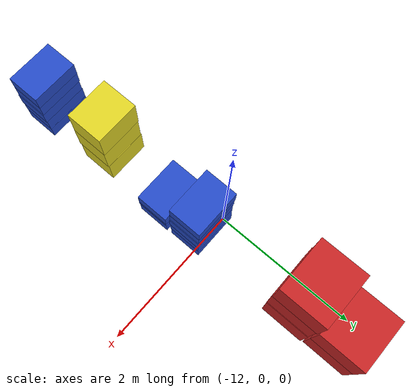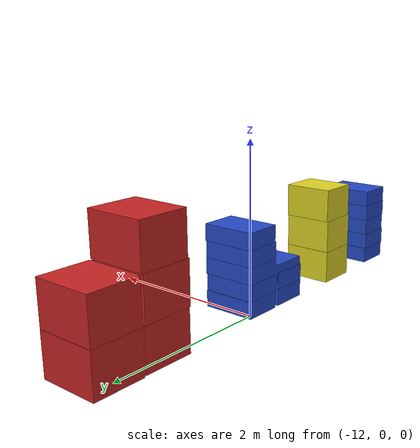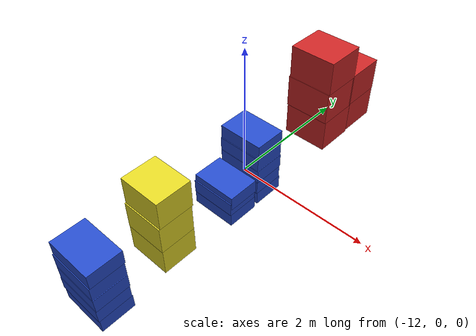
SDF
<sdf version="1.6">
 <world name="default">
  <include><uri>model://sun</uri></include>
  <model name="baggage_B_x5">
   <model name="baggage_B_0">
    <static>1</static>
    <link name="link">
     <collision name="collision"><geometry><box><size>0.65 0.45 0.2</size></box></geometry></collision>
     <visual name="visual">
      <geometry><box><size>0.65 0.45 0.2</size></box></geometry>
      <material>
       <script><uri>file://media/materials/scripts/gazebo.material</uri><name>Gazebo/Blue</name></script>
      </material>
     </visual>
    </link>
    <pose>0 0 0.1 0 -0 0</pose>
   </model>
   <model name="baggage_B_1">
    <static>1</static>
    <link name="link">
     <collision name="collision"><geometry><box><size>0.65 0.45 0.2</size></box></geometry></collision>
     <visual name="visual">
      <geometry><box><size>0.65 0.45 0.2</size></box></geometry>
      <material>
       <script><uri>file://media/materials/scripts/gazebo.material</uri><name>Gazebo/Blue</name></script>
      </material>
     </visual>
    </link>
    <pose>-0.0014 -0.0091 0.3 0 -0 0</pose>
   </model>
   <model name="baggage_B_2">
    <static>1</static>
    <link name="link">
     <collision name="collision"><geometry><box><size>0.65 0.45 0.2</size></box></geometry></collision>
     <visual name="visual">
      <geometry><box><size>0.65 0.45 0.2</size></box></geometry>
      <material>
       <script><uri>file://media/materials/scripts/gazebo.material</uri><name>Gazebo/Blue</name></script>
      </material>
     </visual>
    </link>
    <pose>0.0076 -0.0066 0.5 0 -0 0</pose>
   </model>
   <model name="baggage_B_3">
    <static>1</static>
    <link name="link">
     <collision name="collision"><geometry><box><size>0.65 0.45 0.2</size></box></geometry></collision>
     <visual name="visual">
      <geometry><box><size>0.65 0.45 0.2</size></box></geometry>
      <material>
       <script><uri>file://media/materials/scripts/gazebo.material</uri><name>Gazebo/Blue</name></script>
      </material>
     </visual>
    </link>
    <pose>0 -0.0032 0.7 0 -0 0</pose>
   </model>
   <model name="baggage_B_4">
    <static>1</static>
    <link name="link">
     <collision name="collision"><geometry><box><size>0.65 0.45 0.2</size></box></geometry></collision>
     <visual name="visual">
      <geometry><box><size>0.65 0.45 0.2</size></box></geometry>
      <material>
       <script><uri>file://media/materials/scripts/gazebo.material</uri><name>Gazebo/Blue</name></script>
      </material>
     </visual>
    </link>
    <pose>0.0023 0.0073 0.9 0 -0 0</pose>
   </model>
   <pose>-11.7207 -2.7222 0 0 -0 0</pose>
  </model>
  <model name="baggage_C_x3">
   <model name="baggage_C_0">
    <static>1</static>
    <link name="link">
     <collision name="collision"><geometry><box><size>0.6 0.5 0.4</size></box></geometry></collision>
     <visual name="visual">
      <geometry><box><size>0.6 0.5 0.4</size></box></geometry>
      <material>
       <script><uri>file://media/materials/scripts/gazebo.material</uri><name>Gazebo/Yellow</name></script>
      </material>
     </visual>
    </link>
    <pose>0 0 0.2 0 -0 0</pose>
   </model>
   <model name="baggage_C_1">
    <static>1</static>
    <link name="link">
     <collision name="collision"><geometry><box><size>0.6 0.5 0.4</size></box></geometry></collision>
     <visual name="visual">
      <geometry><box><size>0.6 0.5 0.4</size></box></geometry>
      <material>
       <script><uri>file://media/materials/scripts/gazebo.material</uri><name>Gazebo/Yellow</name></script>
      </material>
     </visual>
    </link>
    <pose>0.0062 -0.0069 0.6 0 -0 0</pose>
   </model>
   <model name="baggage_C_2">
    <static>1</static>
    <link name="link">
     <collision name="collision"><geometry><box><size>0.6 0.5 0.4</size></box></geometry></collision>
     <visual name="visual">
      <geometry><box><size>0.6 0.5 0.4</size></box></geometry>
      <material>
       <script><uri>file://media/materials/scripts/gazebo.material</uri><name>Gazebo/Yellow</name></script>
      </material>
     </visual>
    </link>
    <pose>0.0089 0.0083 1 0 -0 0</pose>
   </model>
   <pose>-11.7735 -1.71632 0 0 -0 0</pose>
  </model>
  <model name="baggage_B_x3_1">
   <model name="baggage_B_0">
    <static>1</static>
    <link name="link">
     <collision name="collision"><geometry><box><size>0.65 0.45 0.2</size></box></geometry></collision>
     <visual name="visual">
      <geometry><box><size>0.65 0.45 0.2</size></box></geometry>
      <material>
       <script><uri>file://media/materials/scripts/gazebo.material</uri><name>Gazebo/Blue</name></script>
      </material>
     </visual>
    </link>
    <pose>0 0 0.1 0 -0 0</pose>
   </model>
   <model name="baggage_B_1">
    <static>1</static>
    <link name="link">
     <collision name="collision"><geometry><box><size>0.65 0.45 0.2</size></box></geometry></collision>
     <visual name="visual">
      <geometry><box><size>0.65 0.45 0.2</size></box></geometry>
      <material>
       <script><uri>file://media/materials/scripts/gazebo.material</uri><name>Gazebo/Blue</name></script>
      </material>
     </visual>
    </link>
    <pose>0.0028 -0.0086 0.3 0 -0 0</pose>
   </model>
   <model name="baggage_B_2">
    <static>1</static>
    <link name="link">
     <collision name="collision"><geometry><box><size>0.65 0.45 0.2</size></box></geometry></collision>
     <visual name="visual">
      <geometry><box><size>0.65 0.45 0.2</size></box></geometry>
      <material>
       <script><uri>file://media/materials/scripts/gazebo.material</uri><name>Gazebo/Blue</name></script>
      </material>
     </visual>
    </link>
    <pose>0.0092 0.006 0.4 0 -0 0</pose>
   </model>
   <pose>-11.732 -0.670798 0 0 -0 0</pose>
  </model>
  <model name="baggage_B_x5_2">
   <model name="baggage_B_0">
    <static>1</static>
    <link name="link">
     <collision name="collision"><geometry><box><size>0.65 0.45 0.2</size></box></geometry></collision>
     <visual name="visual">
      <geometry><box><size>0.65 0.45 0.2</size></box></geometry>
      <material>
       <script><uri>file://media/materials/scripts/gazebo.material</uri><name>Gazebo/Blue</name></script>
      </material>
     </visual>
    </link>
    <pose>0 0 0.1 0 -0 0</pose>
   </model>
   <model name="baggage_B_1">
    <static>1</static>
    <link name="link">
     <collision name="collision"><geometry><box><size>0.65 0.45 0.2</size></box></geometry></collision>
     <visual name="visual">
      <geometry><box><size>0.65 0.45 0.2</size></box></geometry>
      <material>
       <script><uri>file://media/materials/scripts/gazebo.material</uri><name>Gazebo/Blue</name></script>
      </material>
     </visual>
    </link>
    <pose>-0.0014 -0.0091 0.3 0 -0 0</pose>
   </model>
   <model name="baggage_B_2">
    <static>1</static>
    <link name="link">
     <collision name="collision"><geometry><box><size>0.65 0.45 0.2</size></box></geometry></collision>
     <visual name="visual">
      <geometry><box><size>0.65 0.45 0.2</size></box></geometry>
      <material>
       <script><uri>file://media/materials/scripts/gazebo.material</uri><name>Gazebo/Blue</name></script>
      </material>
     </visual>
    </link>
    <pose>0.0076 -0.0066 0.5 0 -0 0</pose>
   </model>
   <model name="baggage_B_3">
    <static>1</static>
    <link name="link">
     <collision name="collision"><geometry><box><size>0.65 0.45 0.2</size></box></geometry></collision>
     <visual name="visual">
      <geometry><box><size>0.65 0.45 0.2</size></box></geometry>
      <material>
       <script><uri>file://media/materials/scripts/gazebo.material</uri><name>Gazebo/Blue</name></script>
      </material>
     </visual>
    </link>
    <pose>0 -0.0032 0.7 0 -0 0</pose>
   </model>
   <model name="baggage_B_4">
    <static>1</static>
    <link name="link">
     <collision name="collision"><geometry><box><size>0.65 0.45 0.2</size></box></geometry></collision>
     <visual name="visual">
      <geometry><box><size>0.65 0.45 0.2</size></box></geometry>
      <material>
       <script><uri>file://media/materials/scripts/gazebo.material</uri><name>Gazebo/Blue</name></script>
      </material>
     </visual>
    </link>
    <pose>0.0023 0.0073 0.9 0 -0 0</pose>
   </model>
   <pose>-11.7456 -0.151198 0 0 -0 0</pose>
  </model>
  <model name="baggage_A_x3_5">
   <model name="baggage_A_0">
    <static>1</static>
    <link name="link">
     <collision name="collision"><geometry><box><size>0.7 0.6 0.5</size></box></geometry></collision>
     <visual name="visual">
      <geometry><box><size>0.7 0.6 0.5</size></box></geometry>
      <material>
       <script><uri>file://media/materials/scripts/gazebo.material</uri><name>Gazebo/Red</name></script>
      </material>
     </visual>
    </link>
    <pose>0 0 0.25 0 -0 0</pose>
   </model>
   <model name="baggage_A_1">
    <static>1</static>
    <link name="link">
     <collision name="collision"><geometry><box><size>0.7 0.6 0.5</size></box></geometry></collision>
     <visual name="visual">
      <geometry><box><size>0.7 0.6 0.5</size></box></geometry>
      <material>
       <script><uri>file://media/materials/scripts/gazebo.material</uri><name>Gazebo/Red</name></script>
      </material>
     </visual>
    </link>
    <pose>-0.006 -0.0077 0.75 0 -0 0</pose>
   </model>
   <model name="baggage_A_2">
    <static>1</static>
    <link name="link">
     <collision name="collision"><geometry><box><size>0.7 0.6 0.5</size></box></geometry></collision>
     <visual name="visual">
      <geometry><box><size>0.7 0.6 0.5</size></box></geometry>
      <material>
       <script><uri>file://media/materials/scripts/gazebo.material</uri><name>Gazebo/Red</name></script>
      </material>
     </visual>
    </link>
    <pose>0.0045 0.0005 1.25 0 -0 0</pose>
   </model>
   <pose>-11.7805 1.41002 0 0 -0 0</pose>
  </model>
  <model name="baggage_A_x2_2">
   <model name="baggage_A_0">
    <static>1</static>
    <link name="link">
     <collision name="collision"><geometry><box><size>0.7 0.6 0.5</size></box></geometry></collision>
     <visual name="visual">
      <geometry><box><size>0.7 0.6 0.5</size></box></geometry>
      <material>
       <script><uri>file://media/materials/scripts/gazebo.material</uri><name>Gazebo/Red</name></script>
      </material>
     </visual>
    </link>
    <pose>0 0 0.25 0 -0 0</pose>
   </model>
   <model name="baggage_A_1">
    <static>1</static>
    <link name="link">
     <collision name="collision"><geometry><box><size>0.7 0.6 0.5</size></box></geometry></collision>
     <visual name="visual">
      <geometry><box><size>0.7 0.6 0.5</size></box></geometry>
      <material>
       <script><uri>file://media/materials/scripts/gazebo.material</uri><name>Gazebo/Red</name></script>
      </material>
     </visual>
    </link>
    <pose>0.0063 -0.0062 0.75 0 -0 0</pose>
   </model>
   <pose>-11.796 2.03958 0 0 -0 0</pose>
  </model>
 </world>
</sdf>
